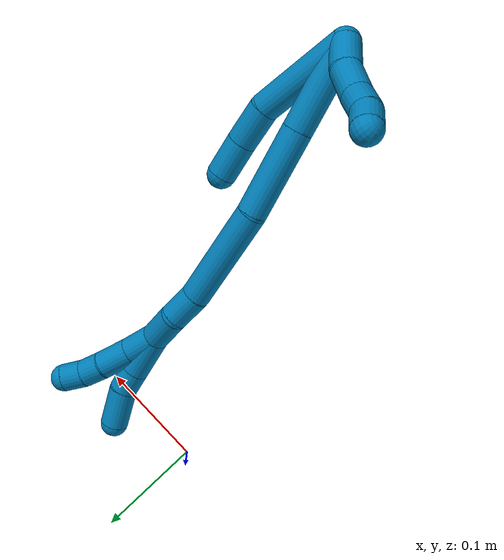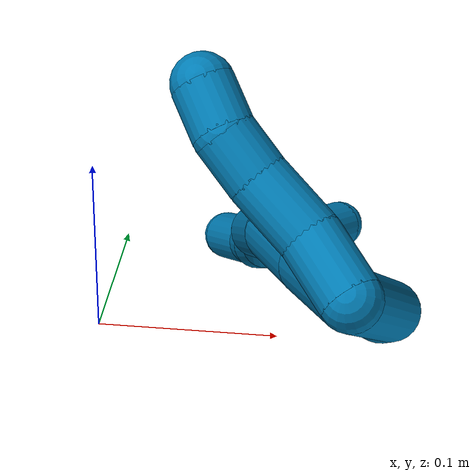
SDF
<sdf version="1.7">
 <world name="default">
  <model name="9">
   <static>0</static>
   <link name="9">
    <collision name="collision-cylinder-e_1_2_8">
     <pose>0.004452 0.004805 -0.040854 -3.0245 0.107802 -1.48809</pose>
     <geometry><cylinder><radius>0.0125</radius><length>0.082751</length></cylinder></geometry>
     <surface>
      <friction><ode><mu>1.16</mu><mu2>1.16</mu2><slip1>0</slip1><slip2>0</slip2></ode></friction>
      <contact><ode><kp>1e+06</kp><kd>1</kd><max_vel>0</max_vel><min_depth>0.001</min_depth></ode></contact>
     </surface>
    </collision>
    <visual name="visual-cylinder-e_1_2_8">
     <pose>0.004452 0.004805 -0.040854 -3.0245 0.107802 -1.48809</pose>
     <geometry><cylinder><radius>0.0125</radius><length>0.082751</length></cylinder></geometry>
     <material><ambient>0 0.490196 0.709804 1</ambient></material>
    </visual>
    <collision name="collision-cylinder-e_2_8_9">
     <pose>0.006701 0.014412 -0.098073 -2.85621 -0.128447 0.841791</pose>
     <geometry><cylinder><radius>0.0125</radius><length>0.034394</length></cylinder></geometry>
     <surface>
      <friction><ode><mu>1.16</mu><mu2>1.16</mu2><slip1>0</slip1><slip2>0</slip2></ode></friction>
      <contact><ode><kp>1e+06</kp><kd>1</kd><max_vel>0</max_vel><min_depth>0.001</min_depth></ode></contact>
     </surface>
    </collision>
    <visual name="visual-cylinder-e_2_8_9">
     <pose>0.006701 0.014412 -0.098073 -2.85621 -0.128447 0.841791</pose>
     <geometry><cylinder><radius>0.0125</radius><length>0.034394</length></cylinder></geometry>
     <material><ambient>0 0.490196 0.709804 1</ambient></material>
    </visual>
    <collision name="collision-cylinder-e_3_9_6">
     <pose>0.002589 0.025422 -0.129527 -2.75128 -0.116473 0.57362</pose>
     <geometry><cylinder><radius>0.0125</radius><length>0.032855</length></cylinder></geometry>
     <surface>
      <friction><ode><mu>1.16</mu><mu2>1.16</mu2><slip1>0</slip1><slip2>0</slip2></ode></friction>
      <contact><ode><kp>1e+06</kp><kd>1</kd><max_vel>0</max_vel><min_depth>0.001</min_depth></ode></contact>
     </surface>
    </collision>
    <visual name="visual-cylinder-e_3_9_6">
     <pose>0.002589 0.025422 -0.129527 -2.75128 -0.116473 0.57362</pose>
     <geometry><cylinder><radius>0.0125</radius><length>0.032855</length></cylinder></geometry>
     <material><ambient>0 0.490196 0.709804 1</ambient></material>
    </visual>
    <collision name="collision-cylinder-e_1_2_10">
     <pose>-0.000379 0.014508 -0.000625 -1.61386 -0.02608 0.027228</pose>
     <geometry><cylinder><radius>0.0125</radius><length>0.029052</length></cylinder></geometry>
     <surface>
      <friction><ode><mu>1.16</mu><mu2>1.16</mu2><slip1>0</slip1><slip2>0</slip2></ode></friction>
      <contact><ode><kp>1e+06</kp><kd>1</kd><max_vel>0</max_vel><min_depth>0.001</min_depth></ode></contact>
     </surface>
    </collision>
    <visual name="visual-cylinder-e_1_2_10">
     <pose>-0.000379 0.014508 -0.000625 -1.61386 -0.02608 0.027228</pose>
     <geometry><cylinder><radius>0.0125</radius><length>0.029052</length></cylinder></geometry>
     <material><ambient>0 0.490196 0.709804 1</ambient></material>
    </visual>
    <collision name="collision-cylinder-e_2_10_11">
     <pose>-0.003368 0.043159 0.001294 -1.39281 -0.179691 0.150372</pose>
     <geometry><cylinder><radius>0.0125</radius><length>0.029213</length></cylinder></geometry>
     <surface>
      <friction><ode><mu>1.16</mu><mu2>1.16</mu2><slip1>0</slip1><slip2>0</slip2></ode></friction>
      <contact><ode><kp>1e+06</kp><kd>1</kd><max_vel>0</max_vel><min_depth>0.001</min_depth></ode></contact>
     </surface>
    </collision>
    <visual name="visual-cylinder-e_2_10_11">
     <pose>-0.003368 0.043159 0.001294 -1.39281 -0.179691 0.150372</pose>
     <geometry><cylinder><radius>0.0125</radius><length>0.029213</length></cylinder></geometry>
     <material><ambient>0 0.490196 0.709804 1</ambient></material>
    </visual>
    <collision name="collision-cylinder-e_3_11_12">
     <pose>-0.006865 0.067264 0.007019 -1.26172 -0.084542 0.061769</pose>
     <geometry><cylinder><radius>0.0125</radius><length>0.020986</length></cylinder></geometry>
     <surface>
      <friction><ode><mu>1.16</mu><mu2>1.16</mu2><slip1>0</slip1><slip2>0</slip2></ode></friction>
      <contact><ode><kp>1e+06</kp><kd>1</kd><max_vel>0</max_vel><min_depth>0.001</min_depth></ode></contact>
     </surface>
    </collision>
    <visual name="visual-cylinder-e_3_11_12">
     <pose>-0.006865 0.067264 0.007019 -1.26172 -0.084542 0.061769</pose>
     <geometry><cylinder><radius>0.0125</radius><length>0.020986</length></cylinder></geometry>
     <material><ambient>0 0.490196 0.709804 1</ambient></material>
    </visual>
    <collision name="collision-cylinder-e_4_12_5">
     <pose>-0.00635 0.08745 0.011246 -1.46876 0.135434 -0.12231</pose>
     <geometry><cylinder><radius>0.0125</radius><length>0.020749</length></cylinder></geometry>
     <surface>
      <friction><ode><mu>1.16</mu><mu2>1.16</mu2><slip1>0</slip1><slip2>0</slip2></ode></friction>
      <contact><ode><kp>1e+06</kp><kd>1</kd><max_vel>0</max_vel><min_depth>0.001</min_depth></ode></contact>
     </surface>
    </collision>
    <visual name="visual-cylinder-e_4_12_5">
     <pose>-0.00635 0.08745 0.011246 -1.46876 0.135434 -0.12231</pose>
     <geometry><cylinder><radius>0.0125</radius><length>0.020749</length></cylinder></geometry>
     <material><ambient>0 0.490196 0.709804 1</ambient></material>
    </visual>
    <collision name="collision-cylinder-e_1_2_13">
     <pose>-0.004424 0.018946 -0.03112 -2.59474 -0.120829 0.424854</pose>
     <geometry><cylinder><radius>0.0125</radius><length>0.073402</length></cylinder></geometry>
     <surface>
      <friction><ode><mu>1.16</mu><mu2>1.16</mu2><slip1>0</slip1><slip2>0</slip2></ode></friction>
      <contact><ode><kp>1e+06</kp><kd>1</kd><max_vel>0</max_vel><min_depth>0.001</min_depth></ode></contact>
     </surface>
    </collision>
    <visual name="visual-cylinder-e_1_2_13">
     <pose>-0.004424 0.018946 -0.03112 -2.59474 -0.120829 0.424854</pose>
     <geometry><cylinder><radius>0.0125</radius><length>0.073402</length></cylinder></geometry>
     <material><ambient>0 0.490196 0.709804 1</ambient></material>
    </visual>
    <collision name="collision-cylinder-e_2_13_14">
     <pose>-0.012979 0.057787 -0.093666 -2.5772 -0.110626 0.3774</pose>
     <geometry><cylinder><radius>0.0125</radius><length>0.074847</length></cylinder></geometry>
     <surface>
      <friction><ode><mu>1.16</mu><mu2>1.16</mu2><slip1>0</slip1><slip2>0</slip2></ode></friction>
      <contact><ode><kp>1e+06</kp><kd>1</kd><max_vel>0</max_vel><min_depth>0.001</min_depth></ode></contact>
     </surface>
    </collision>
    <visual name="visual-cylinder-e_2_13_14">
     <pose>-0.012979 0.057787 -0.093666 -2.5772 -0.110626 0.3774</pose>
     <geometry><cylinder><radius>0.0125</radius><length>0.074847</length></cylinder></geometry>
     <material><ambient>0 0.490196 0.709804 1</ambient></material>
    </visual>
    <collision name="collision-cylinder-e_3_14_15">
     <pose>-0.021897 0.093628 -0.166478 -2.77382 -0.107514 0.563243</pose>
     <geometry><cylinder><radius>0.0125</radius><length>0.089217</length></cylinder></geometry>
     <surface>
      <friction><ode><mu>1.16</mu><mu2>1.16</mu2><slip1>0</slip1><slip2>0</slip2></ode></friction>
      <contact><ode><kp>1e+06</kp><kd>1</kd><max_vel>0</max_vel><min_depth>0.001</min_depth></ode></contact>
     </surface>
    </collision>
    <visual name="visual-cylinder-e_3_14_15">
     <pose>-0.021897 0.093628 -0.166478 -2.77382 -0.107514 0.563243</pose>
     <geometry><cylinder><radius>0.0125</radius><length>0.089217</length></cylinder></geometry>
     <material><ambient>0 0.490196 0.709804 1</ambient></material>
    </visual>
    <collision name="collision-cylinder-e_4_15_16">
     <pose>-0.025718 0.114043 -0.221155 -2.81724 0.068784 -0.414531</pose>
     <geometry><cylinder><radius>0.0125</radius><length>0.028112</length></cylinder></geometry>
     <surface>
      <friction><ode><mu>1.16</mu><mu2>1.16</mu2><slip1>0</slip1><slip2>0</slip2></ode></friction>
      <contact><ode><kp>1e+06</kp><kd>1</kd><max_vel>0</max_vel><min_depth>0.001</min_depth></ode></contact>
     </surface>
    </collision>
    <visual name="visual-cylinder-e_4_15_16">
     <pose>-0.025718 0.114043 -0.221155 -2.81724 0.068784 -0.414531</pose>
     <geometry><cylinder><radius>0.0125</radius><length>0.028112</length></cylinder></geometry>
     <material><ambient>0 0.490196 0.709804 1</ambient></material>
    </visual>
    <collision name="collision-cylinder-e_5_16_1">
     <pose>-0.026929 0.119729 -0.251476 -3.0703 -0.126833 2.11818</pose>
     <geometry><cylinder><radius>0.0125</radius><length>0.034422</length></cylinder></geometry>
     <surface>
      <friction><ode><mu>1.16</mu><mu2>1.16</mu2><slip1>0</slip1><slip2>0</slip2></ode></friction>
      <contact><ode><kp>1e+06</kp><kd>1</kd><max_vel>0</max_vel><min_depth>0.001</min_depth></ode></contact>
     </surface>
    </collision>
    <visual name="visual-cylinder-e_5_16_1">
     <pose>-0.026929 0.119729 -0.251476 -3.0703 -0.126833 2.11818</pose>
     <geometry><cylinder><radius>0.0125</radius><length>0.034422</length></cylinder></geometry>
     <material><ambient>0 0.490196 0.709804 1</ambient></material>
    </visual>
    <collision name="collision-cylinder-e_1_1_17">
     <pose>-0.025644 0.123322 -0.28224 -2.97019 0.243485 -1.91722</pose>
     <geometry><cylinder><radius>0.0125</radius><length>0.028727</length></cylinder></geometry>
     <surface>
      <friction><ode><mu>1.16</mu><mu2>1.16</mu2><slip1>0</slip1><slip2>0</slip2></ode></friction>
      <contact><ode><kp>1e+06</kp><kd>1</kd><max_vel>0</max_vel><min_depth>0.001</min_depth></ode></contact>
     </surface>
    </collision>
    <visual name="visual-cylinder-e_1_1_17">
     <pose>-0.025644 0.123322 -0.28224 -2.97019 0.243485 -1.91722</pose>
     <geometry><cylinder><radius>0.0125</radius><length>0.028727</length></cylinder></geometry>
     <material><ambient>0 0.490196 0.709804 1</ambient></material>
    </visual>
    <collision name="collision-cylinder-e_2_17_18">
     <pose>-0.016838 0.129204 -0.309481 -2.88774 0.365714 -1.93351</pose>
     <geometry><cylinder><radius>0.0125</radius><length>0.029882</length></cylinder></geometry>
     <surface>
      <friction><ode><mu>1.16</mu><mu2>1.16</mu2><slip1>0</slip1><slip2>0</slip2></ode></friction>
      <contact><ode><kp>1e+06</kp><kd>1</kd><max_vel>0</max_vel><min_depth>0.001</min_depth></ode></contact>
     </surface>
    </collision>
    <visual name="visual-cylinder-e_2_17_18">
     <pose>-0.016838 0.129204 -0.309481 -2.88774 0.365714 -1.93351</pose>
     <geometry><cylinder><radius>0.0125</radius><length>0.029882</length></cylinder></geometry>
     <material><ambient>0 0.490196 0.709804 1</ambient></material>
    </visual>
    <collision name="collision-cylinder-e_3_18_19">
     <pose>-0.008141 0.134037 -0.332898 -3.00827 0.323559 -2.36499</pose>
     <geometry><cylinder><radius>0.0125</radius><length>0.021095</length></cylinder></geometry>
     <surface>
      <friction><ode><mu>1.16</mu><mu2>1.16</mu2><slip1>0</slip1><slip2>0</slip2></ode></friction>
      <contact><ode><kp>1e+06</kp><kd>1</kd><max_vel>0</max_vel><min_depth>0.001</min_depth></ode></contact>
     </surface>
    </collision>
    <visual name="visual-cylinder-e_3_18_19">
     <pose>-0.008141 0.134037 -0.332898 -3.00827 0.323559 -2.36499</pose>
     <geometry><cylinder><radius>0.0125</radius><length>0.021095</length></cylinder></geometry>
     <material><ambient>0 0.490196 0.709804 1</ambient></material>
    </visual>
    <collision name="collision-cylinder-e_4_19_4">
     <pose>0.00071 0.136367 -0.351281 -3.02402 0.572448 -2.74684</pose>
     <geometry><cylinder><radius>0.0125</radius><length>0.020297</length></cylinder></geometry>
     <surface>
      <friction><ode><mu>1.16</mu><mu2>1.16</mu2><slip1>0</slip1><slip2>0</slip2></ode></friction>
      <contact><ode><kp>1e+06</kp><kd>1</kd><max_vel>0</max_vel><min_depth>0.001</min_depth></ode></contact>
     </surface>
    </collision>
    <visual name="visual-cylinder-e_4_19_4">
     <pose>0.00071 0.136367 -0.351281 -3.02402 0.572448 -2.74684</pose>
     <geometry><cylinder><radius>0.0125</radius><length>0.020297</length></cylinder></geometry>
     <material><ambient>0 0.490196 0.709804 1</ambient></material>
    </visual>
    <collision name="collision-cylinder-e_1_1_20">
     <pose>-0.032129 0.128022 -0.2871 -2.77795 -0.150775 0.779601</pose>
     <geometry><cylinder><radius>0.0125</radius><length>0.04025</length></cylinder></geometry>
     <surface>
      <friction><ode><mu>1.16</mu><mu2>1.16</mu2><slip1>0</slip1><slip2>0</slip2></ode></friction>
      <contact><ode><kp>1e+06</kp><kd>1</kd><max_vel>0</max_vel><min_depth>0.001</min_depth></ode></contact>
     </surface>
    </collision>
    <visual name="visual-cylinder-e_1_1_20">
     <pose>-0.032129 0.128022 -0.2871 -2.77795 -0.150775 0.779601</pose>
     <geometry><cylinder><radius>0.0125</radius><length>0.04025</length></cylinder></geometry>
     <material><ambient>0 0.490196 0.709804 1</ambient></material>
    </visual>
    <collision name="collision-cylinder-e_2_20_21">
     <pose>-0.036489 0.14003 -0.316157 -2.70105 -0.11512 0.503786</pose>
     <geometry><cylinder><radius>0.0125</radius><length>0.023285</length></cylinder></geometry>
     <surface>
      <friction><ode><mu>1.16</mu><mu2>1.16</mu2><slip1>0</slip1><slip2>0</slip2></ode></friction>
      <contact><ode><kp>1e+06</kp><kd>1</kd><max_vel>0</max_vel><min_depth>0.001</min_depth></ode></contact>
     </surface>
    </collision>
    <visual name="visual-cylinder-e_2_20_21">
     <pose>-0.036489 0.14003 -0.316157 -2.70105 -0.11512 0.503786</pose>
     <geometry><cylinder><radius>0.0125</radius><length>0.023285</length></cylinder></geometry>
     <material><ambient>0 0.490196 0.709804 1</ambient></material>
    </visual>
    <collision name="collision-cylinder-e_3_21_3">
     <pose>-0.043583 0.154861 -0.340806 -2.53241 -0.321225 0.951676</pose>
     <geometry><cylinder><radius>0.0125</radius><length>0.036465</length></cylinder></geometry>
     <surface>
      <friction><ode><mu>1.16</mu><mu2>1.16</mu2><slip1>0</slip1><slip2>0</slip2></ode></friction>
      <contact><ode><kp>1e+06</kp><kd>1</kd><max_vel>0</max_vel><min_depth>0.001</min_depth></ode></contact>
     </surface>
    </collision>
    <visual name="visual-cylinder-e_3_21_3">
     <pose>-0.043583 0.154861 -0.340806 -2.53241 -0.321225 0.951676</pose>
     <geometry><cylinder><radius>0.0125</radius><length>0.036465</length></cylinder></geometry>
     <material><ambient>0 0.490196 0.709804 1</ambient></material>
    </visual>
    <collision name="collision-sphere-3">
     <pose>-0.04934 0.16476 -0.354994 0 -0 0</pose>
     <geometry><sphere><radius>0.0125</radius></sphere></geometry>
     <surface>
      <friction><ode><mu>1.16</mu><mu2>1.16</mu2><slip1>0</slip1><slip2>0</slip2></ode></friction>
      <contact><ode><kp>1e+06</kp><kd>1</kd><max_vel>0</max_vel><min_depth>0.001</min_depth></ode></contact>
     </surface>
    </collision>
    <visual name="visual-sphere-3">
     <pose>-0.04934 0.16476 -0.354994 0 -0 0</pose>
     <geometry><sphere><radius>0.0125</radius></sphere></geometry>
     <material><ambient>0 0.490196 0.709804 1</ambient></material>
    </visual>
    <collision name="collision-sphere-21">
     <pose>-0.037827 0.144962 -0.326618 0 -0 0</pose>
     <geometry><sphere><radius>0.0125</radius></sphere></geometry>
     <surface>
      <friction><ode><mu>1.16</mu><mu2>1.16</mu2><slip1>0</slip1><slip2>0</slip2></ode></friction>
      <contact><ode><kp>1e+06</kp><kd>1</kd><max_vel>0</max_vel><min_depth>0.001</min_depth></ode></contact>
     </surface>
    </collision>
    <visual name="visual-sphere-21">
     <pose>-0.037827 0.144962 -0.326618 0 -0 0</pose>
     <geometry><sphere><radius>0.0125</radius></sphere></geometry>
     <material><ambient>0 0.490196 0.709804 1</ambient></material>
    </visual>
    <collision name="collision-sphere-20">
     <pose>-0.035152 0.135098 -0.305696 0 -0 0</pose>
     <geometry><sphere><radius>0.0125</radius></sphere></geometry>
     <surface>
      <friction><ode><mu>1.16</mu><mu2>1.16</mu2><slip1>0</slip1><slip2>0</slip2></ode></friction>
      <contact><ode><kp>1e+06</kp><kd>1</kd><max_vel>0</max_vel><min_depth>0.001</min_depth></ode></contact>
     </surface>
    </collision>
    <visual name="visual-sphere-20">
     <pose>-0.035152 0.135098 -0.305696 0 -0 0</pose>
     <geometry><sphere><radius>0.0125</radius></sphere></geometry>
     <material><ambient>0 0.490196 0.709804 1</ambient></material>
    </visual>
    <collision name="collision-sphere-4">
     <pose>0.006207 0.137368 -0.359753 0 -0 0</pose>
     <geometry><sphere><radius>0.0125</radius></sphere></geometry>
     <surface>
      <friction><ode><mu>1.16</mu><mu2>1.16</mu2><slip1>0</slip1><slip2>0</slip2></ode></friction>
      <contact><ode><kp>1e+06</kp><kd>1</kd><max_vel>0</max_vel><min_depth>0.001</min_depth></ode></contact>
     </surface>
    </collision>
    <visual name="visual-sphere-4">
     <pose>0.006207 0.137368 -0.359753 0 -0 0</pose>
     <geometry><sphere><radius>0.0125</radius></sphere></geometry>
     <material><ambient>0 0.490196 0.709804 1</ambient></material>
    </visual>
    <collision name="collision-sphere-11">
     <pose>-0.005979 0.057304 0.003839 0 -0 0</pose>
     <geometry><sphere><radius>0.0125</radius></sphere></geometry>
     <surface>
      <friction><ode><mu>1.16</mu><mu2>1.16</mu2><slip1>0</slip1><slip2>0</slip2></ode></friction>
      <contact><ode><kp>1e+06</kp><kd>1</kd><max_vel>0</max_vel><min_depth>0.001</min_depth></ode></contact>
     </surface>
    </collision>
    <visual name="visual-sphere-11">
     <pose>-0.005979 0.057304 0.003839 0 -0 0</pose>
     <geometry><sphere><radius>0.0125</radius></sphere></geometry>
     <material><ambient>0 0.490196 0.709804 1</ambient></material>
    </visual>
    <collision name="collision-sphere-10">
     <pose>-0.000758 0.029015 -0.00125 0 -0 0</pose>
     <geometry><sphere><radius>0.0125</radius></sphere></geometry>
     <surface>
      <friction><ode><mu>1.16</mu><mu2>1.16</mu2><slip1>0</slip1><slip2>0</slip2></ode></friction>
      <contact><ode><kp>1e+06</kp><kd>1</kd><max_vel>0</max_vel><min_depth>0.001</min_depth></ode></contact>
     </surface>
    </collision>
    <visual name="visual-sphere-10">
     <pose>-0.000758 0.029015 -0.00125 0 -0 0</pose>
     <geometry><sphere><radius>0.0125</radius></sphere></geometry>
     <material><ambient>0 0.490196 0.709804 1</ambient></material>
    </visual>
    <collision name="collision-sphere-6">
     <pose>0.00068 0.03163 -0.144616 0 -0 0</pose>
     <geometry><sphere><radius>0.0125</radius></sphere></geometry>
     <surface>
      <friction><ode><mu>1.16</mu><mu2>1.16</mu2><slip1>0</slip1><slip2>0</slip2></ode></friction>
      <contact><ode><kp>1e+06</kp><kd>1</kd><max_vel>0</max_vel><min_depth>0.001</min_depth></ode></contact>
     </surface>
    </collision>
    <visual name="visual-sphere-6">
     <pose>0.00068 0.03163 -0.144616 0 -0 0</pose>
     <geometry><sphere><radius>0.0125</radius></sphere></geometry>
     <material><ambient>0 0.490196 0.709804 1</ambient></material>
    </visual>
    <collision name="collision-sphere-9">
     <pose>0.004498 0.019214 -0.114438 0 -0 0</pose>
     <geometry><sphere><radius>0.0125</radius></sphere></geometry>
     <surface>
      <friction><ode><mu>1.16</mu><mu2>1.16</mu2><slip1>0</slip1><slip2>0</slip2></ode></friction>
      <contact><ode><kp>1e+06</kp><kd>1</kd><max_vel>0</max_vel><min_depth>0.001</min_depth></ode></contact>
     </surface>
    </collision>
    <visual name="visual-sphere-9">
     <pose>0.004498 0.019214 -0.114438 0 -0 0</pose>
     <geometry><sphere><radius>0.0125</radius></sphere></geometry>
     <material><ambient>0 0.490196 0.709804 1</ambient></material>
    </visual>
    <collision name="collision-sphere-2">
     <geometry><sphere><radius>0.0125</radius></sphere></geometry>
     <surface>
      <friction><ode><mu>1.16</mu><mu2>1.16</mu2><slip1>0</slip1><slip2>0</slip2></ode></friction>
      <contact><ode><kp>1e+06</kp><kd>1</kd><max_vel>0</max_vel><min_depth>0.001</min_depth></ode></contact>
     </surface>
    </collision>
    <visual name="visual-sphere-2">
     <geometry><sphere><radius>0.0125</radius></sphere></geometry>
     <material><ambient>0 0.490196 0.709804 1</ambient></material>
    </visual>
    <collision name="collision-sphere-19">
     <pose>-0.004788 0.135367 -0.342809 0 -0 0</pose>
     <geometry><sphere><radius>0.0125</radius></sphere></geometry>
     <surface>
      <friction><ode><mu>1.16</mu><mu2>1.16</mu2><slip1>0</slip1><slip2>0</slip2></ode></friction>
      <contact><ode><kp>1e+06</kp><kd>1</kd><max_vel>0</max_vel><min_depth>0.001</min_depth></ode></contact>
     </surface>
    </collision>
    <visual name="visual-sphere-19">
     <pose>-0.004788 0.135367 -0.342809 0 -0 0</pose>
     <geometry><sphere><radius>0.0125</radius></sphere></geometry>
     <material><ambient>0 0.490196 0.709804 1</ambient></material>
    </visual>
    <collision name="collision-sphere-8">
     <pose>0.008903 0.009611 -0.081707 0 -0 0</pose>
     <geometry><sphere><radius>0.0125</radius></sphere></geometry>
     <surface>
      <friction><ode><mu>1.16</mu><mu2>1.16</mu2><slip1>0</slip1><slip2>0</slip2></ode></friction>
      <contact><ode><kp>1e+06</kp><kd>1</kd><max_vel>0</max_vel><min_depth>0.001</min_depth></ode></contact>
     </surface>
    </collision>
    <visual name="visual-sphere-8">
     <pose>0.008903 0.009611 -0.081707 0 -0 0</pose>
     <geometry><sphere><radius>0.0125</radius></sphere></geometry>
     <material><ambient>0 0.490196 0.709804 1</ambient></material>
    </visual>
    <collision name="collision-sphere-12">
     <pose>-0.007751 0.077224 0.010199 0 -0 0</pose>
     <geometry><sphere><radius>0.0125</radius></sphere></geometry>
     <surface>
      <friction><ode><mu>1.16</mu><mu2>1.16</mu2><slip1>0</slip1><slip2>0</slip2></ode></friction>
      <contact><ode><kp>1e+06</kp><kd>1</kd><max_vel>0</max_vel><min_depth>0.001</min_depth></ode></contact>
     </surface>
    </collision>
    <visual name="visual-sphere-12">
     <pose>-0.007751 0.077224 0.010199 0 -0 0</pose>
     <geometry><sphere><radius>0.0125</radius></sphere></geometry>
     <material><ambient>0 0.490196 0.709804 1</ambient></material>
    </visual>
    <collision name="collision-sphere-5">
     <pose>-0.004949 0.097676 0.012293 0 -0 0</pose>
     <geometry><sphere><radius>0.0125</radius></sphere></geometry>
     <surface>
      <friction><ode><mu>1.16</mu><mu2>1.16</mu2><slip1>0</slip1><slip2>0</slip2></ode></friction>
      <contact><ode><kp>1e+06</kp><kd>1</kd><max_vel>0</max_vel><min_depth>0.001</min_depth></ode></contact>
     </surface>
    </collision>
    <visual name="visual-sphere-5">
     <pose>-0.004949 0.097676 0.012293 0 -0 0</pose>
     <geometry><sphere><radius>0.0125</radius></sphere></geometry>
     <material><ambient>0 0.490196 0.709804 1</ambient></material>
    </visual>
    <collision name="collision-sphere-13">
     <pose>-0.008848 0.037891 -0.06224 0 -0 0</pose>
     <geometry><sphere><radius>0.0125</radius></sphere></geometry>
     <surface>
      <friction><ode><mu>1.16</mu><mu2>1.16</mu2><slip1>0</slip1><slip2>0</slip2></ode></friction>
      <contact><ode><kp>1e+06</kp><kd>1</kd><max_vel>0</max_vel><min_depth>0.001</min_depth></ode></contact>
     </surface>
    </collision>
    <visual name="visual-sphere-13">
     <pose>-0.008848 0.037891 -0.06224 0 -0 0</pose>
     <geometry><sphere><radius>0.0125</radius></sphere></geometry>
     <material><ambient>0 0.490196 0.709804 1</ambient></material>
    </visual>
    <collision name="collision-sphere-14">
     <pose>-0.017111 0.077682 -0.125092 0 -0 0</pose>
     <geometry><sphere><radius>0.0125</radius></sphere></geometry>
     <surface>
      <friction><ode><mu>1.16</mu><mu2>1.16</mu2><slip1>0</slip1><slip2>0</slip2></ode></friction>
      <contact><ode><kp>1e+06</kp><kd>1</kd><max_vel>0</max_vel><min_depth>0.001</min_depth></ode></contact>
     </surface>
    </collision>
    <visual name="visual-sphere-14">
     <pose>-0.017111 0.077682 -0.125092 0 -0 0</pose>
     <geometry><sphere><radius>0.0125</radius></sphere></geometry>
     <material><ambient>0 0.490196 0.709804 1</ambient></material>
    </visual>
    <collision name="collision-sphere-15">
     <pose>-0.026684 0.109574 -0.207863 0 -0 0</pose>
     <geometry><sphere><radius>0.0125</radius></sphere></geometry>
     <surface>
      <friction><ode><mu>1.16</mu><mu2>1.16</mu2><slip1>0</slip1><slip2>0</slip2></ode></friction>
      <contact><ode><kp>1e+06</kp><kd>1</kd><max_vel>0</max_vel><min_depth>0.001</min_depth></ode></contact>
     </surface>
    </collision>
    <visual name="visual-sphere-15">
     <pose>-0.026684 0.109574 -0.207863 0 -0 0</pose>
     <geometry><sphere><radius>0.0125</radius></sphere></geometry>
     <material><ambient>0 0.490196 0.709804 1</ambient></material>
    </visual>
    <collision name="collision-sphere-16">
     <pose>-0.024752 0.118512 -0.234446 0 -0 0</pose>
     <geometry><sphere><radius>0.0125</radius></sphere></geometry>
     <surface>
      <friction><ode><mu>1.16</mu><mu2>1.16</mu2><slip1>0</slip1><slip2>0</slip2></ode></friction>
      <contact><ode><kp>1e+06</kp><kd>1</kd><max_vel>0</max_vel><min_depth>0.001</min_depth></ode></contact>
     </surface>
    </collision>
    <visual name="visual-sphere-16">
     <pose>-0.024752 0.118512 -0.234446 0 -0 0</pose>
     <geometry><sphere><radius>0.0125</radius></sphere></geometry>
     <material><ambient>0 0.490196 0.709804 1</ambient></material>
    </visual>
    <collision name="collision-sphere-1">
     <pose>-0.029106 0.120945 -0.268505 0 -0 0</pose>
     <geometry><sphere><radius>0.0125</radius></sphere></geometry>
     <surface>
      <friction><ode><mu>1.16</mu><mu2>1.16</mu2><slip1>0</slip1><slip2>0</slip2></ode></friction>
      <contact><ode><kp>1e+06</kp><kd>1</kd><max_vel>0</max_vel><min_depth>0.001</min_depth></ode></contact>
     </surface>
    </collision>
    <visual name="visual-sphere-1">
     <pose>-0.029106 0.120945 -0.268505 0 -0 0</pose>
     <geometry><sphere><radius>0.0125</radius></sphere></geometry>
     <material><ambient>0 0.490196 0.709804 1</ambient></material>
    </visual>
    <collision name="collision-sphere-18">
     <pose>-0.011495 0.132708 -0.322987 0 -0 0</pose>
     <geometry><sphere><radius>0.0125</radius></sphere></geometry>
     <surface>
      <friction><ode><mu>1.16</mu><mu2>1.16</mu2><slip1>0</slip1><slip2>0</slip2></ode></friction>
      <contact><ode><kp>1e+06</kp><kd>1</kd><max_vel>0</max_vel><min_depth>0.001</min_depth></ode></contact>
     </surface>
    </collision>
    <visual name="visual-sphere-18">
     <pose>-0.011495 0.132708 -0.322987 0 -0 0</pose>
     <geometry><sphere><radius>0.0125</radius></sphere></geometry>
     <material><ambient>0 0.490196 0.709804 1</ambient></material>
    </visual>
    <collision name="collision-sphere-17">
     <pose>-0.022181 0.1257 -0.295976 0 -0 0</pose>
     <geometry><sphere><radius>0.0125</radius></sphere></geometry>
     <surface>
      <friction><ode><mu>1.16</mu><mu2>1.16</mu2><slip1>0</slip1><slip2>0</slip2></ode></friction>
      <contact><ode><kp>1e+06</kp><kd>1</kd><max_vel>0</max_vel><min_depth>0.001</min_depth></ode></contact>
     </surface>
    </collision>
    <visual name="visual-sphere-17">
     <pose>-0.022181 0.1257 -0.295976 0 -0 0</pose>
     <geometry><sphere><radius>0.0125</radius></sphere></geometry>
     <material><ambient>0 0.490196 0.709804 1</ambient></material>
    </visual>
    <inertial>
     <pose>-0.012974 0.073457 -0.149977 0 -0 0</pose>
     <mass>0.75</mass>
     <inertia>
      <ixx>0.000168</ixx>
      <ixy>0</ixy>
      <ixz>0</ixz>
      <iyy>-6.7e-05</iyy>
      <iyz>0</iyz>
      <izz>-0.000122</izz>
     </inertia>
    </inertial>
   </link>
   <pose>0.158612 -0.314444 0.22494 0.671082 -0.504287 0.375081</pose>
  </model>
 </world>
</sdf>
